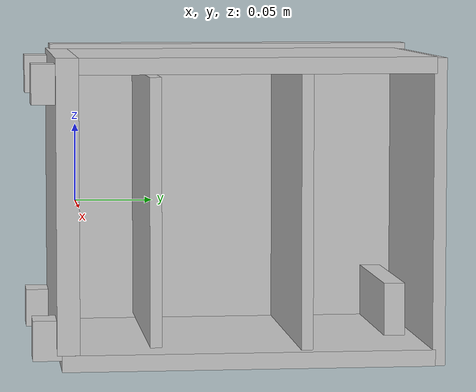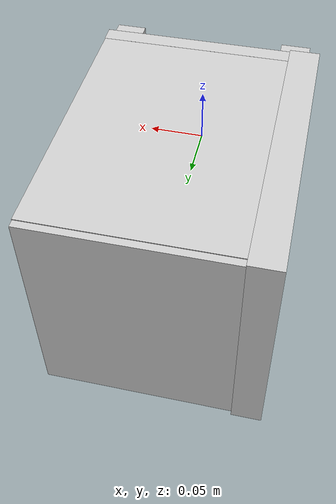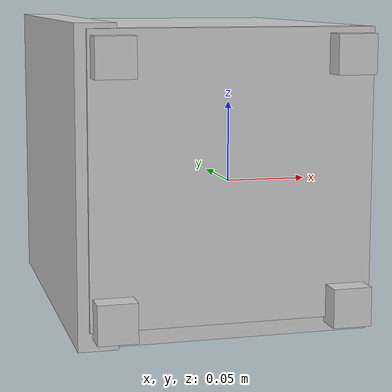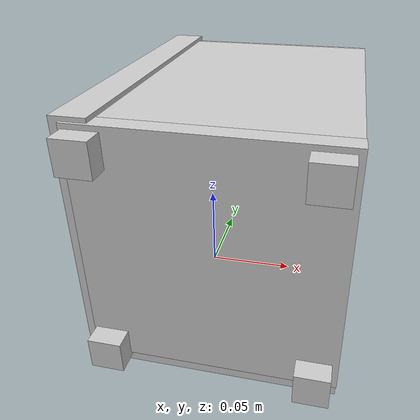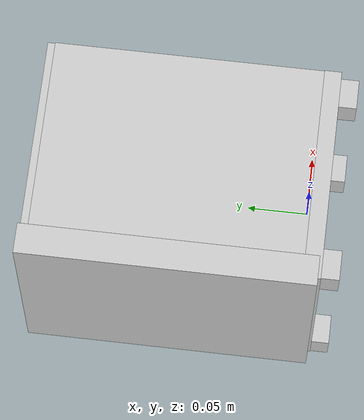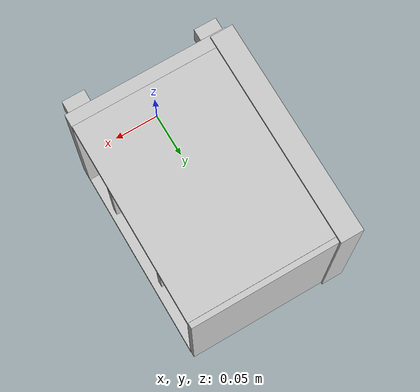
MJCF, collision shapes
<mujoco model="base">
  <asset>
  <texture file="template.png" name="tex-base" type="2d" />
  <material name="base" reflectance="0.5" texrepeat="1 1" texture="tex-base" texuniform="false" />
  <mesh file="visual/base_vis.msh" name="base_vis" scale="0.1 0.1 0.1" /></asset>
  <worldbody>
    <body>
      <body name="object">
      <geom solimp="0.998 0.998 0.001" solref="0.001 1" density="100" friction="0.95 0.3 0.1" type="mesh" mesh="base_vis" conaffinity="0" contype="0" group="1" material="base" /><geom solimp="0.998 0.998 0.001" solref="0.001 1" density="100" friction="0.95 0.3 0.1" type="box" pos="-0.08603 0.10856 -0.00036" quat="0.70711 0.70711 0.00000 -0.00000" size="0.01277 0.10000 0.12189" group="0" rgba="0.8 0.8 0.8 0.3" /><geom solimp="0.998 0.998 0.001" solref="0.001 1" density="100" friction="0.95 0.3 0.1" type="box" pos="0.07324 -0.02013 -0.07936" quat="0.00000 0.70711 0.70711 0.00000" size="0.01058 0.01260 0.01260" group="0" rgba="0.8 0.8 0.8 0.3" /><geom solimp="0.998 0.998 0.001" solref="0.001 1" density="100" friction="0.95 0.3 0.1" type="box" pos="0.07324 -0.02013 0.07991" quat="0.00000 0.70711 0.70711 0.00000" size="0.01058 0.01260 0.01260" group="0" rgba="0.8 0.8 0.8 0.3" /><geom solimp="0.998 0.998 0.001" solref="0.001 1" density="100" friction="0.95 0.3 0.1" type="box" pos="-0.07711 -0.02013 0.07991" quat="0.00000 0.70711 0.70711 0.00000" size="0.01058 0.01260 0.01260" group="0" rgba="0.8 0.8 0.8 0.3" /><geom solimp="0.998 0.998 0.001" solref="0.001 1" density="100" friction="0.95 0.3 0.1" type="box" pos="-0.07711 -0.02013 -0.07936" quat="0.00000 0.70711 0.70711 0.00000" size="0.01058 0.01260 0.01260" group="0" rgba="0.8 0.8 0.8 0.3" /><geom solimp="0.998 0.998 0.001" solref="0.001 1" density="100" friction="0.95 0.3 0.1" type="box" pos="0.00061 0.10474 -0.09337" quat="0.50000 -0.50000 0.50000 0.50000" size="0.00520 0.08923 0.11741" group="0" rgba="0.8 0.8 0.8 0.3" /><geom solimp="0.998 0.998 0.001" solref="0.001 1" density="100" friction="0.95 0.3 0.1" type="box" pos="-0.00066 0.22434 -0.00136" quat="0.00000 0.70711 0.70711 0.00000" size="0.00400 0.09008 0.09701" group="0" rgba="0.8 0.8 0.8 0.3" /><geom solimp="0.998 0.998 0.001" solref="0.001 1" density="100" friction="0.95 0.3 0.1" type="box" pos="-0.00066 -0.00866 0.00412" quat="0.00000 0.70711 0.70711 0.00000" size="0.00712 0.09099 0.09220" group="0" rgba="0.8 0.8 0.8 0.3" /><geom solimp="0.998 0.998 0.001" solref="0.001 1" density="100" friction="0.95 0.3 0.1" type="box" pos="-0.00066 0.14180 -0.00117" quat="0.00000 0.70711 0.70711 0.00000" size="0.00375 0.08250 0.08737" group="0" rgba="0.8 0.8 0.8 0.3" /><geom solimp="0.998 0.998 0.001" solref="0.001 1" density="100" friction="0.95 0.3 0.1" type="box" pos="-0.00066 0.04622 -0.00039" quat="0.50000 0.50000 -0.50000 -0.50000" size="0.00375 0.08445 0.08502" group="0" rgba="0.8 0.8 0.8 0.3" /><geom solimp="0.998 0.998 0.001" solref="0.001 1" density="100" friction="0.95 0.3 0.1" type="box" pos="-0.01506 0.20551 -0.06987" quat="0.50000 -0.50000 -0.50000 0.50000" size="0.00675 0.01709 0.04962" group="0" rgba="0.8 0.8 0.8 0.3" /><geom solimp="0.998 0.998 0.001" solref="0.001 1" density="100" friction="0.95 0.3 0.1" type="box" pos="0.00061 0.10474 0.09111" quat="0.50000 -0.50000 0.50000 0.50000" size="0.00520 0.08923 0.11741" group="0" rgba="0.8 0.8 0.8 0.3" /></body>
      <site rgba="0 0 0 0" size="0.005" pos="0 0 -0.0240" name="bottom_site" />
      <site rgba="0 0 0 0" size="0.005" pos="0 0 0.04" name="top_site" />
      <site rgba="0 0 0 0" size="0.005" pos="0.025 0.025 0" name="horizontal_radius_site" />
    </body>
  </worldbody>
</mujoco>
